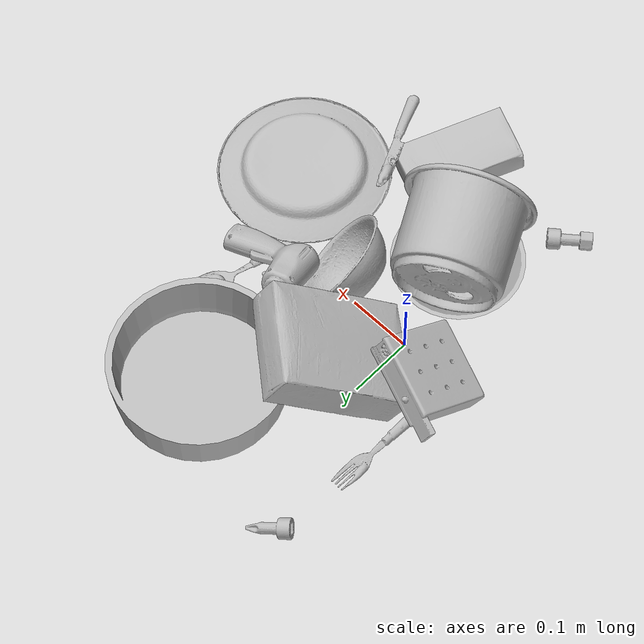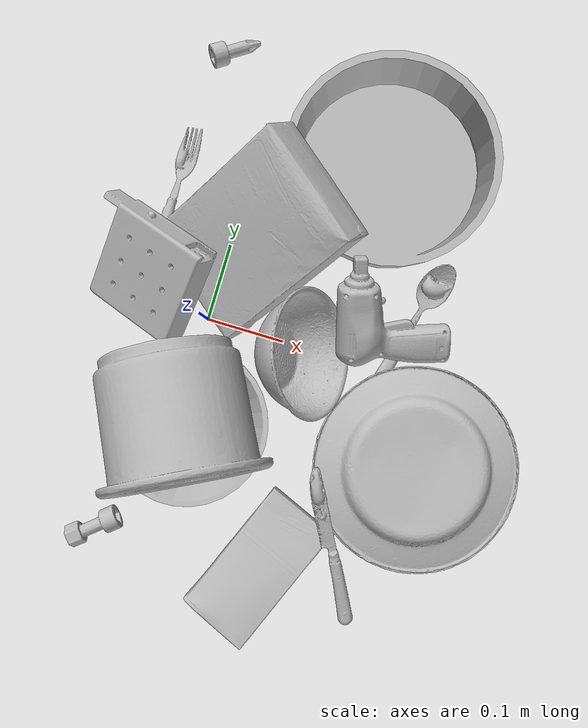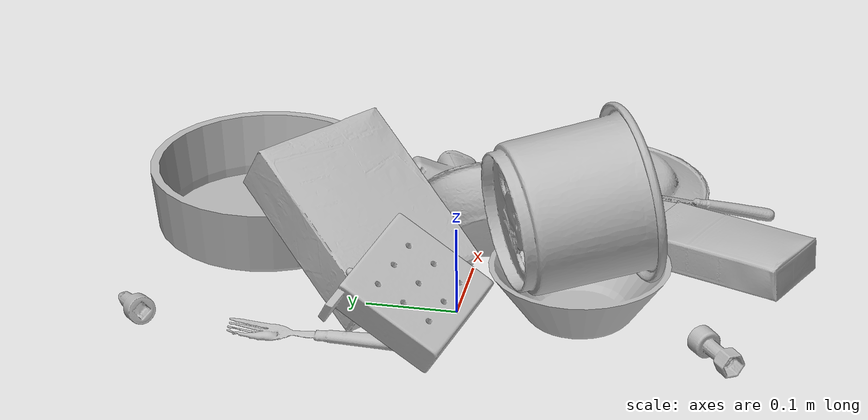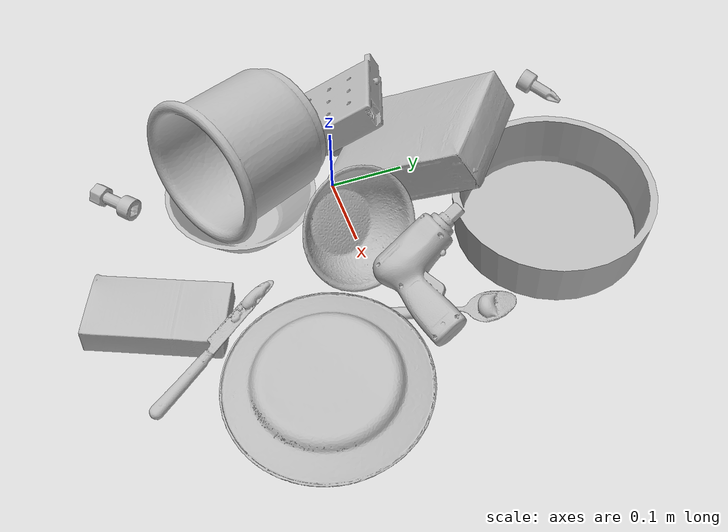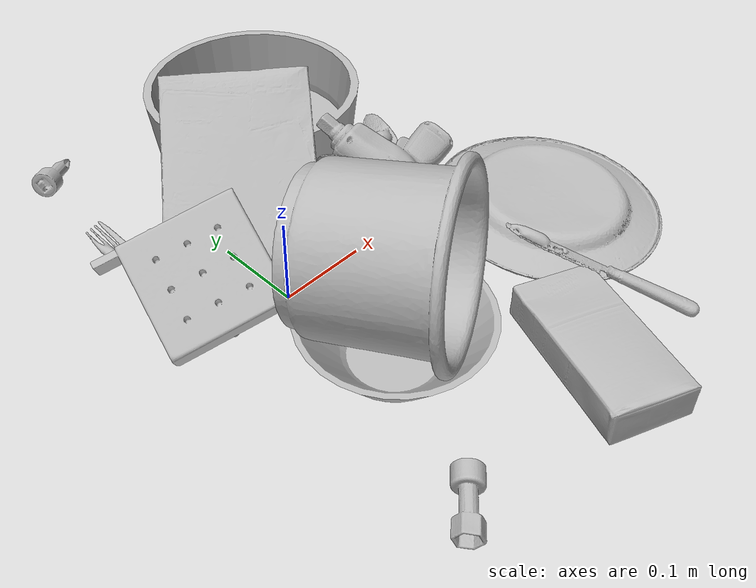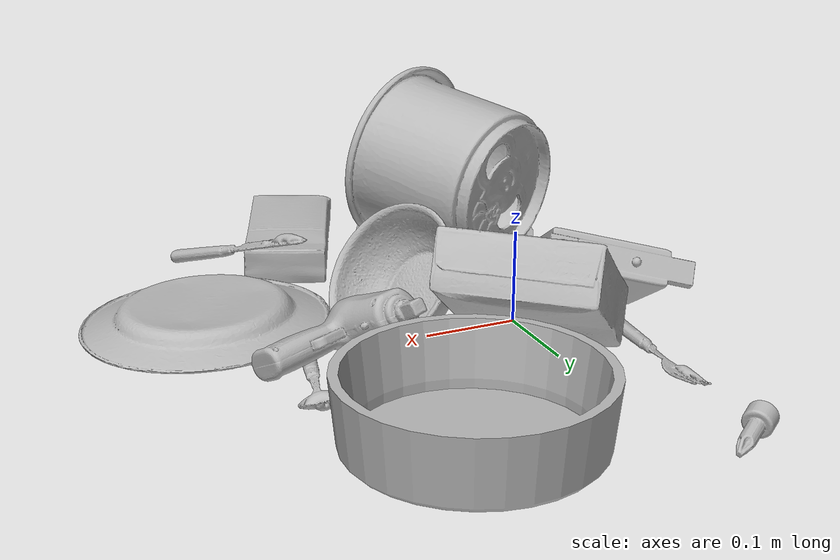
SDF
<sdf version="1.4">
  <world name="default">
    <light name="light1" type="point">
      <pose>0 0 1 0 0 0</pose>
      <diffuse>3 3 3 1</diffuse>
      <specular>3 3 3 1</specular>
    </light>
    <light name="light2" type="point">
      <pose>0 0.5 2 0 0 0</pose>
      <diffuse>1 1 1 1</diffuse>
      <specular>1 1 1 1</specular>
    </light>
    <light name="light3" type="point">
      <pose>0 0.5 2 0 0 0</pose>
      <diffuse>3 3 3 1</diffuse>
      <specular>3 3 3 1</specular>
    </light>
    <scene>
      <ambient>0.7 0.7 0.7</ambient>
    </scene>
    <model name="plate1">
      <link name="link_plate1">
        <collision name="default">
          <geometry>
            <mesh>
              <uri>model://plate/collision_meshes/collision.obj</uri>
              <scale>1.0 1.0 1.0</scale>
            </mesh>
          </geometry>
          <surface>
            <friction>
              <ode>
                <mu>0.5</mu>
                <mu2>0.5</mu2>
              </ode>
            </friction>
          <contact>
        <ode>
            <max_vel>0</max_vel>
            <min_depth>0.0001</min_depth>
            <kp>1e8</kp>
        </ode>
    </contact></surface>
        </collision>
        <visual name="default">
          <geometry>
            <mesh>
              <uri>model://plate/visual_meshes/visual.dae</uri>
              <scale>1.0 1.0 1.0</scale>
            </mesh>
          </geometry>
        </visual>
        <inertial>
          <mass>0.11001742631196976</mass>
          <pose>-0.0006044686888344586 0.000278257648460567 -0.0010561998933553696 0.00221878912528286 -0.0032254756485070152 0.4526088917028743</pose>
          <inertia>
            <ixx>0.00051466376</ixx>
            <iyy>0.0005097412</iyy>
            <izz>0.0010066056</izz>
            <ixy>0</ixy>
            <ixz>0</ixz>
            <iyz>0</iyz>
          </inertia>
        </inertial>
      </link>
      <pose>0.30580469965934753 -0.10764320194721222 0.019082406535744667 -3.0892354737173204 0.005869290615843955 0.6885293545378478</pose>
    </model>
    <model name="plate2">
      <link name="link_plate2">
        <collision name="default">
          <geometry>
            <mesh>
              <uri>model://pan_tefal/collision_meshes/collision.obj</uri>
              <scale>1.0 1.0 1.0</scale>
            </mesh>
          </geometry>
          <surface>
            <friction>
              <ode>
                <mu>0.5</mu>
                <mu2>0.5</mu2>
              </ode>
            </friction>
          <contact>
        <ode>
            <max_vel>0</max_vel>
            <min_depth>0.0001</min_depth>
            <kp>1e8</kp>
        </ode>
    </contact></surface>
        </collision>
        <visual name="default">
          <geometry>
            <mesh>
              <uri>model://pan_tefal/visual_meshes/visual.dae</uri>
              <scale>1.0 1.0 1.0</scale>
            </mesh>
          </geometry>
        </visual>
        <inertial>
          <mass>1.457576870918274</mass>
          <pose>-0.00018002426077146083 3.279360316810198e-05 -0.008514936082065105 0.0008190306735146073 -0.00033013365411173643 -0.33185917339097665</pose>
          <inertia>
            <ixx>0.010061583</ixx>
            <iyy>0.01012645</iyy>
            <izz>0.01852144</izz>
            <ixy>0</ixy>
            <ixz>0</ixz>
            <iyz>0</iyz>
          </inertia>
        </inertial>
      </link>
      <pose>0.16670528054237366 0.24756762385368347 0.03804994001984596 -2.4799883505921707e-06 -4.2185998849467667e-07 1.32251050849434</pose>
    </model>
    <model name="bowl1">
      <link name="link_bowl1">
        <collision name="default">
          <geometry>
            <mesh>
              <uri>model://bowl_a/collision_meshes/collision.obj</uri>
              <scale>1.0 1.0 1.0</scale>
            </mesh>
          </geometry>
          <surface>
            <friction>
              <ode>
                <mu>0.5</mu>
                <mu2>0.5</mu2>
              </ode>
            </friction>
          <contact>
        <ode>
            <max_vel>0</max_vel>
            <min_depth>0.0001</min_depth>
            <kp>1e8</kp>
        </ode>
    </contact></surface>
        </collision>
        <visual name="default">
          <geometry>
            <mesh>
              <uri>model://bowl_a/visual_meshes/visual.dae</uri>
              <scale>1.0 1.0 1.0</scale>
            </mesh>
          </geometry>
        </visual>
        <inertial>
          <mass>0.29746556282043457</mass>
          <pose>0.0002786756958812475 4.7311452362919226e-05 -0.0013765294570475817 -0.0009805438325310402 -0.001093816410149737 -0.19123071729823712</pose>
          <inertia>
            <ixx>0.0008468981</ixx>
            <iyy>0.00085209764</iyy>
            <izz>0.0015062407</izz>
            <ixy>0</ixy>
            <ixz>0</ixz>
            <iyz>0</iyz>
          </inertia>
        </inertial>
      </link>
      <pose>0.0194612555205822 -0.13052715361118317 0.0303826704621315 1.278552927921556e-06 -3.651793541380462e-05 1.2782301233170266</pose>
    </model>
    <model name="bowl2">
      <link name="link_bowl2">
        <collision name="default">
          <geometry>
            <mesh>
              <uri>model://bowl/collision_meshes/collision.obj</uri>
              <scale>1.0 1.0 1.0</scale>
            </mesh>
          </geometry>
          <surface>
            <friction>
              <ode>
                <mu>0.5</mu>
                <mu2>0.5</mu2>
              </ode>
            </friction>
          <contact>
        <ode>
            <max_vel>0</max_vel>
            <min_depth>0.0001</min_depth>
            <kp>1e8</kp>
        </ode>
    </contact></surface>
        </collision>
        <visual name="default">
          <geometry>
            <mesh>
              <uri>model://bowl/visual_meshes/visual.dae</uri>
              <scale>1.0 1.0 1.0</scale>
            </mesh>
          </geometry>
        </visual>
        <inertial>
          <mass>0.12348172068595886</mass>
          <pose>0.0002044529828708619 -0.0010302055161446333 -0.0008042656118050218 -0.01576411854188812 0.014546757923928972 0.7140383762832406</pose>
          <inertia>
            <ixx>0.0002836472</ixx>
            <iyy>0.00027730947</iyy>
            <izz>0.00047719217</izz>
            <ixy>0</ixy>
            <ixz>0</ixz>
            <iyz>0</iyz>
          </inertia>
        </inertial>
      </link>
      <pose>0.11998488008975983 -0.013048285618424416 0.055692411959171295 0.9703183202762691 -0.007832942524059947 1.8671223322434825</pose>
    </model>
    <model name="silverware1">
      <link name="link_silverware1">
        <collision name="default">
          <geometry>
            <mesh>
              <uri>model://spoon/collision_meshes/collision.obj</uri>
              <scale>1.0 1.0 1.0</scale>
            </mesh>
          </geometry>
          <surface>
            <friction>
              <ode>
                <mu>0.5</mu>
                <mu2>0.5</mu2>
              </ode>
            </friction>
          <contact>
        <ode>
            <max_vel>0</max_vel>
            <min_depth>0.0001</min_depth>
            <kp>1e8</kp>
        </ode>
    </contact></surface>
        </collision>
        <visual name="default">
          <geometry>
            <mesh>
              <uri>model://spoon/visual_meshes/visual.dae</uri>
              <scale>1.0 1.0 1.0</scale>
            </mesh>
          </geometry>
        </visual>
        <inertial>
          <mass>0.03284037858247757</mass>
          <pose>-0.005526319611817598 -0.001603417214937508 -0.000727165665011853 0.03521671059584429 -0.039065856285187314 0.0061506144474233635</pose>
          <inertia>
            <ixx>1.8266356e-06</ixx>
            <iyy>0.00012495652</iyy>
            <izz>0.00012585736</izz>
            <ixy>0</ixy>
            <ixz>0</ixz>
            <iyz>0</iyz>
          </inertia>
        </inertial>
      </link>
      <pose>0.2477007508277893 0.05860615521669388 0.00887620635330677 0.15147644589787165 0.009909725272710005 1.31213721244972</pose>
    </model>
    <model name="box1">
      <link name="link_box1">
        <collision name="default">
          <geometry>
            <mesh>
              <uri>model://cracker_box/collision_meshes/collision.obj</uri>
              <scale>1.0 1.0 1.0</scale>
            </mesh>
          </geometry>
          <surface>
            <friction>
              <ode>
                <mu>0.5</mu>
                <mu2>0.5</mu2>
              </ode>
            </friction>
          <contact>
        <ode>
            <max_vel>0</max_vel>
            <min_depth>0.0001</min_depth>
            <kp>1e8</kp>
        </ode>
    </contact></surface>
        </collision>
        <visual name="default">
          <geometry>
            <mesh>
              <uri>model://cracker_box/visual_meshes/visual.dae</uri>
              <scale>1.0 1.0 1.0</scale>
            </mesh>
          </geometry>
        </visual>
        <inertial>
          <mass>2.434305191040039</mass>
          <pose>0.0009464126778766513 0.0002543424488976598 -0.0017029534792527556 -0.0003162073658586955 -0.011106488669321329 0.0025467952332158075</pose>
          <inertia>
            <ixx>0.0061917845</ixx>
            <iyy>0.010223853</iyy>
            <izz>0.014590379</izz>
            <ixy>0</ixy>
            <ixz>0</ixz>
            <iyz>0</iyz>
          </inertia>
        </inertial>
      </link>
      <pose>0.038728199899196625 0.11324372887611389 0.0820174515247345 3.1264929704039957 -0.5773857762262258 0.8984860258335138</pose>
    </model>
    <model name="box2">
      <link name="link_box2">
        <collision name="default">
          <geometry>
            <mesh>
              <uri>model://sugar_box/collision_meshes/collision.obj</uri>
              <scale>1.0 1.0 1.0</scale>
            </mesh>
          </geometry>
          <surface>
            <friction>
              <ode>
                <mu>0.5</mu>
                <mu2>0.5</mu2>
              </ode>
            </friction>
          <contact>
        <ode>
            <max_vel>0</max_vel>
            <min_depth>0.0001</min_depth>
            <kp>1e8</kp>
        </ode>
    </contact></surface>
        </collision>
        <visual name="default">
          <geometry>
            <mesh>
              <uri>model://sugar_box/visual_meshes/visual.dae</uri>
              <scale>1.0 1.0 1.0</scale>
            </mesh>
          </geometry>
        </visual>
        <inertial>
          <mass>0.5700510144233704</mass>
          <pose>0.0010343727190047503 3.849109634757042e-05 -0.00036364805418998003 -0.00040462615490547663 0.0010506634056045778 0.0026153790218534064</pose>
          <inertia>
            <ixx>0.00047496508</ixx>
            <iyy>0.0015351841</iyy>
            <izz>0.0018377992</izz>
            <ixy>0</ixy>
            <ixz>0</ixz>
            <iyz>0</iyz>
          </inertia>
        </inertial>
      </link>
      <pose>0.14959926903247833 -0.27427634596824646 0.022362401708960533 3.1412706323408117 -0.02510847501141713 -1.9694826955089557</pose>
    </model>
    <model name="cup1">
      <link name="link_cup1">
        <collision name="default">
          <geometry>
            <mesh>
              <uri>model://i_cups/collision_meshes/collision.obj</uri>
              <scale>2.0 2.0 2.0</scale>
            </mesh>
          </geometry>
          <surface>
            <friction>
              <ode>
                <mu>0.5</mu>
                <mu2>0.5</mu2>
              </ode>
            </friction>
          <contact>
        <ode>
            <max_vel>0</max_vel>
            <min_depth>0.0001</min_depth>
            <kp>1e8</kp>
        </ode>
    </contact></surface>
        </collision>
        <visual name="default">
          <geometry>
            <mesh>
              <uri>model://i_cups/visual_meshes/visual.dae</uri>
              <scale>2.0 2.0 2.0</scale>
            </mesh>
          </geometry>
        </visual>
        <inertial>
          <mass>0.8749163746833801</mass>
          <pose>0.0002248019736725837 0.0003359491820447147 -0.0017158064292743802 -0.028982988446176382 -0.03987323668700188 -0.3459135059395342</pose>
          <inertia>
            <ixx>0.0048453393</ixx>
            <iyy>0.0048880302</iyy>
            <izz>0.0054154512</izz>
            <ixy>0</ixy>
            <ixz>0</ixz>
            <iyz>0</iyz>
          </inertia>
        </inertial>
      </link>
      <pose>0.01381599623709917 -0.11957378685474396 0.1318141371011734 1.4184974362094573 -0.7924967645732947 0.5827609391901475</pose>
    </model>
    <model name="silverware2">
      <link name="link_silverware2">
        <collision name="default">
          <geometry>
            <mesh>
              <uri>model://fork/collision_meshes/collision.obj</uri>
              <scale>1.0 1.0 1.0</scale>
            </mesh>
          </geometry>
          <surface>
            <friction>
              <ode>
                <mu>0.5</mu>
                <mu2>0.5</mu2>
              </ode>
            </friction>
          <contact>
        <ode>
            <max_vel>0</max_vel>
            <min_depth>0.0001</min_depth>
            <kp>1e8</kp>
        </ode>
    </contact></surface>
        </collision>
        <visual name="default">
          <geometry>
            <mesh>
              <uri>model://fork/visual_meshes/visual.dae</uri>
              <scale>1.0 1.0 1.0</scale>
            </mesh>
          </geometry>
        </visual>
        <inertial>
          <mass>0.021080315113067627</mass>
          <pose>-0.02957003377377987 0.00046588227269239724 0.0003218860656488687 -0.013550583544297463 -0.010977830979267335 0.014453899239778455</pose>
          <inertia>
            <ixx>7.3898417e-07</ixx>
            <iyy>5.503463e-05</iyy>
            <izz>5.5365177e-05</izz>
            <ixy>0</ixy>
            <ixz>0</ixz>
            <iyz>0</iyz>
          </inertia>
        </inertial>
      </link>
      <pose>-0.0874522402882576 0.13318590819835663 0.005700035952031612 -0.17892379764600866 0.025211983424649056 1.5373562681317312</pose>
    </model>
    <model name="silverware3">
      <link name="link_silverware3">
        <collision name="default">
          <geometry>
            <mesh>
              <uri>model://knife/collision_meshes/collision.obj</uri>
              <scale>1.0 1.0 1.0</scale>
            </mesh>
          </geometry>
          <surface>
            <friction>
              <ode>
                <mu>0.5</mu>
                <mu2>0.5</mu2>
              </ode>
            </friction>
          <contact>
        <ode>
            <max_vel>0</max_vel>
            <min_depth>0.0001</min_depth>
            <kp>1e8</kp>
        </ode>
    </contact></surface>
        </collision>
        <visual name="default">
          <geometry>
            <mesh>
              <uri>model://knife/visual_meshes/visual.dae</uri>
              <scale>1.0 1.0 1.0</scale>
            </mesh>
          </geometry>
        </visual>
        <inertial>
          <mass>0.03557601198554039</mass>
          <pose>-0.023785259574651718 0.0015275123296305537 5.062016498413868e-05 0.07305791577183936 0.01724842049726123 -0.007409813921982597</pose>
          <inertia>
            <ixx>1.0097915e-06</ixx>
            <iyy>0.00013667726</iyy>
            <izz>0.00013700248</izz>
            <ixy>0</ixy>
            <ixz>0</ixz>
            <iyz>0</iyz>
          </inertia>
        </inertial>
      </link>
      <pose>0.22690963745117188 -0.22590890526771545 0.03883260488510132 -2.984170947949776 -0.31676066580999496 2.064616524979478</pose>
    </model>
    <model name="toy1">
      <link name="link_toy1">
        <collision name="default">
          <geometry>
            <mesh>
              <uri>model://b_toy_airplane/collision_meshes/collision.obj</uri>
              <scale>1.0 1.0 1.0</scale>
            </mesh>
          </geometry>
          <surface>
            <friction>
              <ode>
                <mu>0.5</mu>
                <mu2>0.5</mu2>
              </ode>
            </friction>
          <contact>
        <ode>
            <max_vel>0</max_vel>
            <min_depth>0.0001</min_depth>
            <kp>1e8</kp>
        </ode>
    </contact></surface>
        </collision>
        <visual name="default">
          <geometry>
            <mesh>
              <uri>model://b_toy_airplane/visual_meshes/visual.dae</uri>
              <scale>1.0 1.0 1.0</scale>
            </mesh>
          </geometry>
        </visual>
        <inertial>
          <mass>0.2131570726633072</mass>
          <pose>0.005081363953649998 0.00401558680459857 0.00954306498169899 -0.040018114912876775 -0.04022188568687408 -0.5601502887595425</pose>
          <inertia>
            <ixx>0.00039573</ixx>
            <iyy>0.00015817716</iyy>
            <izz>0.00049232744</izz>
            <ixy>0</ixy>
            <ixz>0</ixz>
            <iyz>0</iyz>
          </inertia>
        </inertial>
      </link>
      <pose>0.20939844846725464 0.04825318604707718 0.03256722539663315 0.157822492096864 -0.4556828534352916 1.8436792566377946</pose>
    </model>
    <model name="toy2">
      <link name="link_toy2">
        <collision name="default">
          <geometry>
            <mesh>
              <uri>model://nine_hole_peg_test/collision_meshes/collision.obj</uri>
              <scale>1.0 1.0 1.0</scale>
            </mesh>
          </geometry>
          <surface>
            <friction>
              <ode>
                <mu>0.5</mu>
                <mu2>0.5</mu2>
              </ode>
            </friction>
          <contact>
        <ode>
            <max_vel>0</max_vel>
            <min_depth>0.0001</min_depth>
            <kp>1e8</kp>
        </ode>
    </contact></surface>
        </collision>
        <visual name="default">
          <geometry>
            <mesh>
              <uri>model://nine_hole_peg_test/visual_meshes/visual.dae</uri>
              <scale>1.0 1.0 1.0</scale>
            </mesh>
          </geometry>
        </visual>
        <inertial>
          <mass>0.9403080940246582</mass>
          <pose>-0.004617387894541025 -0.009647617116570473 2.646069333422929e-05 -0.0014666798116952742 0.0007194174694617774 -0.6342424398534297</pose>
          <inertia>
            <ixx>0.0014703267</ixx>
            <iyy>0.0013728285</iyy>
            <izz>0.0025764457</izz>
            <ixy>0</ixy>
            <ixz>0</ixz>
            <iyz>0</iyz>
          </inertia>
        </inertial>
      </link>
      <pose>-0.08349069952964783 0.04105415940284729 0.06135379523038864 -0.27503571175875685 -0.5234420958784017 1.3862336614301103</pose>
    </model>
    <model name="toy3">
      <link name="link_toy3">
        <collision name="default">
          <geometry>
            <mesh>
              <uri>model://a_lego_duplo/collision_meshes/collision.obj</uri>
              <scale>1.0 1.0 1.0</scale>
            </mesh>
          </geometry>
          <surface>
            <friction>
              <ode>
                <mu>0.5</mu>
                <mu2>0.5</mu2>
              </ode>
            </friction>
          <contact>
        <ode>
            <max_vel>0</max_vel>
            <min_depth>0.0001</min_depth>
            <kp>1e8</kp>
        </ode>
    </contact></surface>
        </collision>
        <visual name="default">
          <geometry>
            <mesh>
              <uri>model://a_lego_duplo/visual_meshes/visual.dae</uri>
              <scale>1.0 1.0 1.0</scale>
            </mesh>
          </geometry>
        </visual>
        <inertial>
          <mass>0.023130550980567932</mass>
          <pose>-0.00011337705655023456 0.00018517566786613315 0.00036926098982803524 -0.014116995996849858 -0.00012565876120078728 6.143831699070756e-05</pose>
          <inertia>
            <ixx>2.9655212e-06</ixx>
            <iyy>6.643419e-06</iyy>
            <izz>8.229349e-06</izz>
            <ixy>0</ixy>
            <ixz>0</ixz>
            <iyz>0</iyz>
          </inertia>
        </inertial>
      </link>
      <pose>-0.06034204736351967 0.02185017429292202 0.015980396419763565 -3.12797502846798 0.4500699782939168 -2.525298464890474</pose>
    </model>
    <model name="toy4">
      <link name="link_toy4">
        <collision name="default">
          <geometry>
            <mesh>
              <uri>model://c_toy_airplane/collision_meshes/collision.obj</uri>
              <scale>1.0 1.0 1.0</scale>
            </mesh>
          </geometry>
          <surface>
            <friction>
              <ode>
                <mu>0.5</mu>
                <mu2>0.5</mu2>
              </ode>
            </friction>
          <contact>
        <ode>
            <max_vel>0</max_vel>
            <min_depth>0.0001</min_depth>
            <kp>1e8</kp>
        </ode>
    </contact></surface>
        </collision>
        <visual name="default">
          <geometry>
            <mesh>
              <uri>model://c_toy_airplane/visual_meshes/visual.dae</uri>
              <scale>1.0 1.0 1.0</scale>
            </mesh>
          </geometry>
        </visual>
        <inertial>
          <mass>0.016945533454418182</mass>
          <pose>-0.00023024251277092844 -4.426267139479023e-07 -0.006080526392906904 -0.00619248279943298 -0.01679780513617648 0.7654772671109313</pose>
          <inertia>
            <ixx>7.781044e-06</ixx>
            <iyy>7.759084e-06</iyy>
            <izz>1.826835e-06</izz>
            <ixy>0</ixy>
            <ixz>0</ixz>
            <iyz>0</iyz>
          </inertia>
        </inertial>
      </link>
      <pose>-0.06035682559013367 -0.287424772977829 0.014369765296578407 -1.6759373961724955 1.2157803844644859 2.165616460271161</pose>
    </model>
    <model name="toy5">
      <link name="link_toy5">
        <collision name="default">
          <geometry>
            <mesh>
              <uri>model://d_toy_airplane/collision_meshes/collision.obj</uri>
              <scale>1.0 1.0 1.0</scale>
            </mesh>
          </geometry>
          <surface>
            <friction>
              <ode>
                <mu>0.5</mu>
                <mu2>0.5</mu2>
              </ode>
            </friction>
          <contact>
        <ode>
            <max_vel>0</max_vel>
            <min_depth>0.0001</min_depth>
            <kp>1e8</kp>
        </ode>
    </contact></surface>
        </collision>
        <visual name="default">
          <geometry>
            <mesh>
              <uri>model://d_toy_airplane/visual_meshes/visual.dae</uri>
              <scale>1.0 1.0 1.0</scale>
            </mesh>
          </geometry>
        </visual>
        <inertial>
          <mass>0.01782749593257904</mass>
          <pose>9.410309576196596e-05 -5.809334834339097e-05 -0.011728094890713692 0.00026697885790152897 0.00467897817044427 0.5194648744438854</pose>
          <inertia>
            <ixx>5.3443378e-06</ixx>
            <iyy>5.3483677e-06</iyy>
            <izz>1.6134899e-06</izz>
            <ixy>0</ixy>
            <ixz>0</ixz>
            <iyz>0</iyz>
          </inertia>
        </inertial>
      </link>
      <pose>-0.06459374725818634 0.34375670552253723 0.011753437109291553 1.7936030359126507 0.49235211489546427 2.3228767270161956</pose>
    </model>
  <physics type="ode">
      <max_contacts>50</max_contacts>
      <ode>
        <solver>
          <type>quick</type>
          <iters>75</iters>
        </solver>
        <constraints>
          <contact_max_correcting_vel>0</contact_max_correcting_vel>
          <contact_surface_layer>0</contact_surface_layer>
        </constraints>
      </ode>
    </physics></world>
</sdf>
